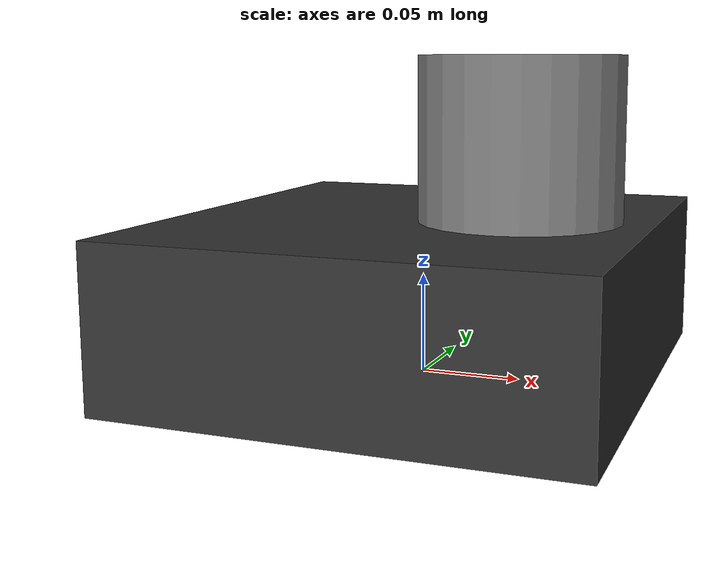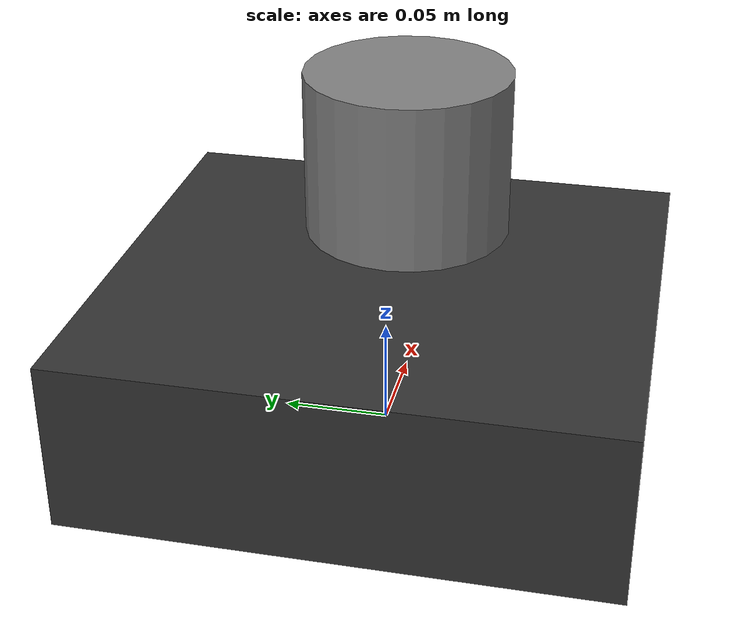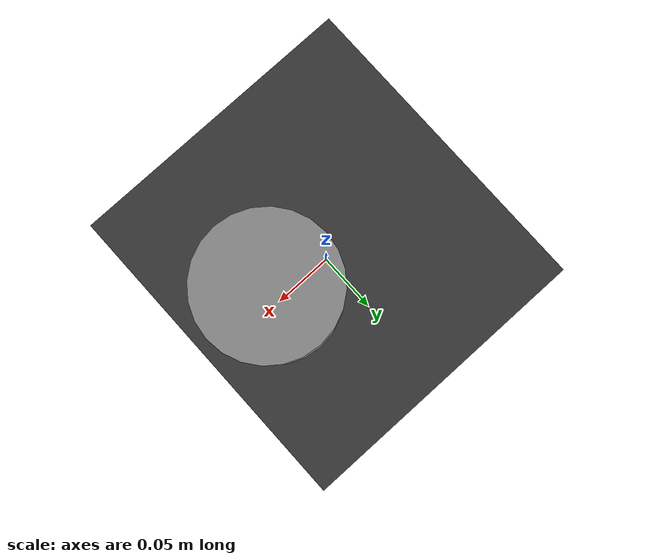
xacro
<?xml version="1.0"?>
<robot xmlns:xacro="http://www.ros.org/wiki/xacro" name="robot">

    <!--xacro:include filename="example_include.xacro" /-->

    <!-- ****************** ROBOT BASE FOOTPRINT ***************************  -->
    <!-- Define the center of the main robot chassis projected on the ground -->
    <link name="base_footprint"/>

    <!-- ********************** ROBOT BASE *********************************  -->

    <joint name="base_joint" type="fixed">
        <origin xyz="0 0 0.04" rpy="0 0 0"/>
        <parent link="base_footprint"/>
        <child link="base_link"/>
    </joint>

    <link name="base_link">
        <visual>
            <origin xyz="0 0 0.00" rpy="0 0 0"/>
            <geometry>
                <box size="0.23 0.25 0.08" />
            </geometry>
            <material name="grey">
                <color rgba=".2 .2 .2 1"/>
            </material>
        </visual>
        <collision>
            <origin xyz="0 0 0.00" rpy="0 0 0"/>
            <geometry>
                <box size="0.30 0.30 0.08" />
            </geometry>
        </collision>
    </link>

    <joint name="lidar_joint" type="fixed">
        <parent link="base_link"/>
        <child link="laser"/>
        <origin xyz="0.05 0 0.08" rpy="0 0 0"/>
    </joint>

    <link name="laser">
        <visual>
            <origin xyz="0 0 0" rpy="0 0 0"/>
            <geometry>
                <cylinder radius="0.05" length="0.08"/>
            </geometry>
            <material name="Lgrey">
                <color rgba=".5 .5 .5 1"/>
            </material>
        </visual>

        <collision>
            <origin xyz="0 0 0" rpy="0 0 0"/>
            <geometry>
                <cylinder radius="0.0508" length="0.18"/>
            </geometry>
        </collision>

    </link>

</robot>
